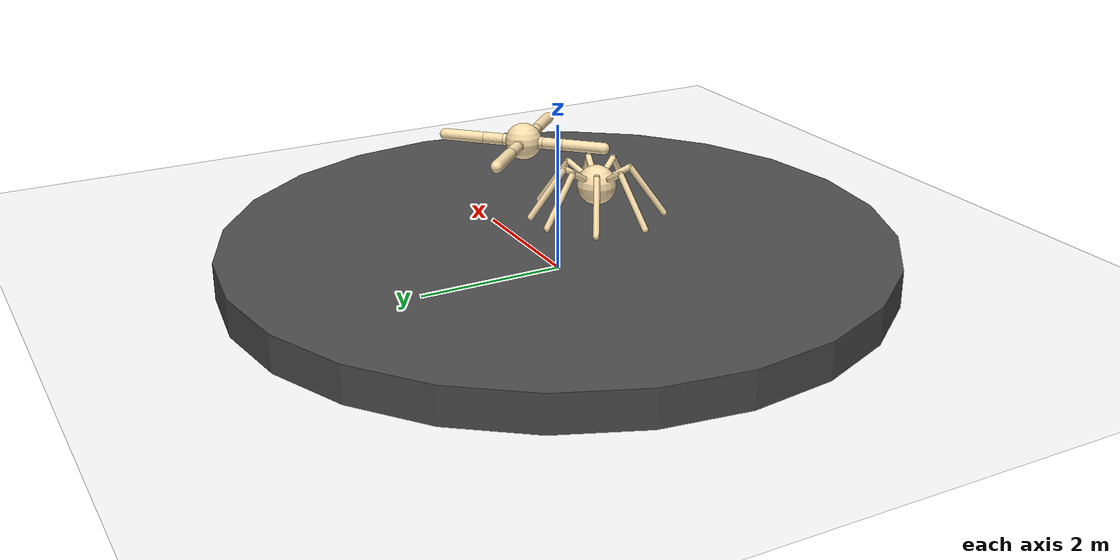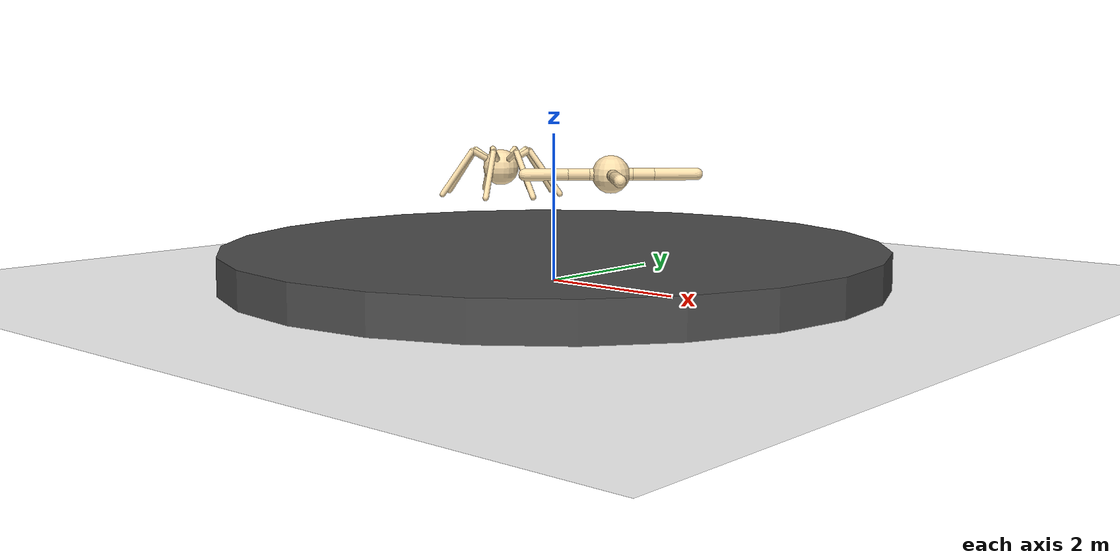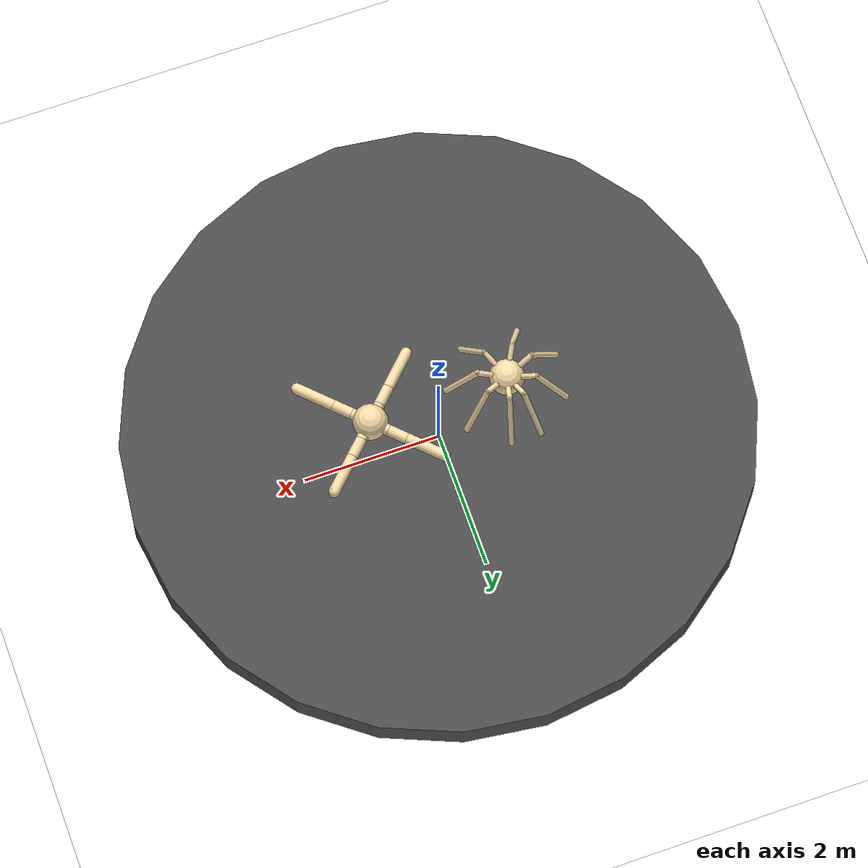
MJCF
<mujoco model="mutiagent_world">
  <compiler angle="degree" coordinate="local" inertiafromgeom="true" />
  <option integrator="RK4" timestep="0.003" solver="PGS" iterations="1000" />
  <default>
    <joint armature="1" damping="1" limited="true" />
  <default class="agent0"><geom conaffinity="0" condim="3" density="5.0" friction="1 0.5 0.5" margin="0.01" rgba="0.98 0.87 0.67 1" material="geom" contype="1" />
    <motor ctrllimited="true" ctrlrange="-1. 1." />
  </default><default class="agent1"><joint armature="1" damping="1" limited="true" />
    <geom conaffinity="1" condim="3" density="5.0" friction="1 0.5 0.5" margin="0.01" rgba="0.98 0.87 0.67 1" material="geom" contype="0" />
  </default></default>
  <visual>
    <headlight ambient=".1 .1 .1" diffuse=".6 .6 .6" specular="0.3 0.3 0.3" />
    <map znear=".01" />
    <quality shadowsize="16384" />
  </visual>
  <asset>
    <texture builtin="gradient" height="100" rgb1="1 1 1" rgb2="0 0 0" type="skybox" width="100" />
    <texture builtin="flat" height="1278" mark="cross" markrgb="0 0 0" name="texgeom" random="0.01" rgb1="0.8 0.6 0.4" rgb2="0.8 0.6 0.4" type="cube" width="127" />
    <texture builtin="checker" height="100" name="texplane" rgb1="0.5 0.5 0.5" rgb2="0.5 0.5 0.5" type="2d" width="100" markrgb="0.2 0.2 0.2" mark="edge" />
    <texture name="MatPlane" type="2d" builtin="checker" rgb1=".5 .5 .5" rgb2=".5 .5 .5" width="300" height="300" mark="edge" markrgb="0.1 0.1 0.1" />
    <material name="MatPlane" texture="MatPlane" texrepeat="2 2" texuniform="true" reflectance=".2" />
    <material name="geom" texture="texgeom" texuniform="true" />
  </asset>
  <worldbody>
    <light cutoff="100" diffuse="1 1 1" dir="-0 0 -1.3" directional="true" exponent="1" pos="0 0 1.3" specular=".1 .1 .1" />
    <geom contype="1" conaffinity="1" friction="1 .1 .1" condim="3" material="MatPlane" name="floor" pos="0 0 0" rgba="1 1 1 1" size="20 20 0.125" type="plane" />
    <geom fromto="4 -5 0  4 +5 0" name="rightgoal" rgba="0.6 0.0 0.0 0" size=".03" type="cylinder" />
    <geom fromto="-4 -5 0  -4 +5 0" name="leftgoal" rgba="0.6 0.0 0.0 0" size=".03" type="cylinder" />
    <geom conaffinity="1" condim="3" contype="1" friction="1 .1 .1" name="arena" size="4.5 .25" type="cylinder" pos="0 0 0.25" rgba="0.3 0.3 0.3 1" />
  <body name="agent0/torso" pos="-1 0 1.5">
    <geom name="agent0/torso_geom" pos="0 0 0" size="0.25" type="sphere" class="agent0" />
    <joint armature="0" damping="0" limited="false" margin="0.01" name="agent0/root" pos="0 0 0" type="free" />

    <body name="agent0/back_right_leg" pos="0 0 0">
      <geom density="5.0" fromto="0 0 0 -0.056 0.209 0.125" name="agent0/aux_1_geom" size="0.04" type="capsule" class="agent0" />
      <body name="agent0/aux_11" pos="-0.056 0.209 0.125">
        <joint axis="0 0 1" name="agent0/hip_1" pos="0 0 0" range="-20 20" type="hinge" />
        <geom density="5.0" fromto="0 0 0 -0.050 0.188 0.113" name="agent0/back_right_leg_geom" size="0.04" type="capsule" class="agent0" />
        <body name="agent0/aux_12" pos="-0.050 0.188 0.113">
          <joint axis="0.97 0.26 0" name="agent0/ankle_1" pos="0 0 0" range="-35 45" type="hinge" />
          <geom density="5.0" fromto="0 0 0 -0.112 0.418 -0.600" name="agent0/back_right_ankle_geom" size="0.04" type="capsule" class="agent0" />
        </body>
      </body>
    </body>

    <body name="agent0/back_left_leg" pos="0 0 0">
      <geom density="5.0" fromto="0 0 0 0.056 0.209 0.125" name="agent0/aux_2_geom" size="0.04" type="capsule" class="agent0" />
      <body name="agent0/aux_21" pos="0.056 0.209 0.125">
        <joint axis="0 0 1" name="agent0/hip_2" pos="0 0 0" range="-20 20" type="hinge" />
        <geom density="5.0" fromto="0 0 0 0.050 0.188 0.113" name="agent0/back_left_leg_geom" size="0.04" type="capsule" class="agent0" />
        <body name="agent0/aux_22" pos="0.050 0.188 0.113">
          <joint axis="-0.97 0.26 0" name="agent0/ankle_2" pos="0 0 0" range="-45 35" type="hinge" />
          <geom density="5.0" fromto="0 0 0 0.112 0.418 -0.600" name="agent0/back_left_ankle_geom" size="0.04" type="capsule" class="agent0" />
        </body>
      </body>
    </body>

    <body name="agent0/middle_back_right_leg" pos="0 0 0">
      <geom density="5.0" fromto="0 0 0 -0.188 0.108 0.125" name="agent0/aux_3_geom" size="0.04" type="capsule" class="agent0" />
      <body name="agent0/aux_31" pos="-0.188 0.108 0.125">
        <joint axis="0 0 1" name="agent0/hip_3" pos="0 0 0" range="-20 20" type="hinge" />
        <geom density="5.0" fromto="0 0 0 -0.170 0.097 0.113" name="agent0/middle_back_right_leg_geom" size="0.04" type="capsule" class="agent0" />
        <body name="agent0/aux_32" pos="-0.170 0.097 0.113">
          <joint axis="0.50 0.87 0" name="agent0/ankle_3" pos="0 0 0" range="-35 45" type="hinge" />
          <geom density="5.0" fromto="0 0 0 -0.376 0.216 -0.600" name="agent0/middle_back_right_ankle_geom" size="0.04" type="capsule" class="agent0" />
        </body>
      </body>
    </body>

    <body name="agent0/middle_back_left_leg" pos="0 0 0">
      <geom density="5.0" fromto="0 0 0 0.188 0.108 0.125" name="agent0/aux_4_geom" size="0.04" type="capsule" class="agent0" />
      <body name="agent0/aux_41" pos="0.188 0.108 0.125">
        <joint axis="0 0 1" name="agent0/hip_4" pos="0 0 0" range="-20 20" type="hinge" />
        <geom density="5.0" fromto="0 0 0 0.170 0.097 0.113" name="agent0/middle_back_left_leg_geom" size="0.04" type="capsule" class="agent0" />
        <body name="agent0/aux_42" pos="0.170 0.097 0.113">
          <joint axis="-0.50 0.87 0" name="agent0/ankle_4" pos="0 0 0" range="-45 35" type="hinge" />
          <geom density="5.0" fromto="0 0 0 0.376 0.216 -0.600" name="agent0/middle_back_left_ankle_geom" size="0.04" type="capsule" class="agent0" />
        </body>
      </body>
    </body>

    <body name="agent0/middle_front_right_leg" pos="0 0 0">
      <geom density="5.0" fromto="0 0 0 -0.209 -0.056 0.125" name="agent0/aux_5_geom" size="0.04" type="capsule" class="agent0" />
      <body name="agent0/aux_51" pos="-0.209 -0.056 0.125">
        <joint axis="0 0 1" name="agent0/hip_5" pos="0 0 0" range="-20 20" type="hinge" />
        <geom density="5.0" fromto="0 0 0 -0.188 -0.050 0.113" name="agent0/middle_front_right_leg_geom" size="0.04" type="capsule" class="agent0" />
        <body name="agent0/aux_52" pos="-0.188 -0.050 0.113">
          <joint axis="-0.26 0.97 0" name="agent0/ankle_5" pos="0 0 0" range="-35 45" type="hinge" />
          <geom density="5.0" fromto="0 0 0 -0.418 -0.112 -0.600" name="agent0/middle_front_right_ankle_geom" size="0.04" type="capsule" class="agent0" />
        </body>
      </body>
    </body>

    <body name="agent0/middle_front_left_leg" pos="0 0 0">
      <geom density="5.0" fromto="0 0 0 0.209 -0.056 0.125" name="agent0/aux_6_geom" size="0.04" type="capsule" class="agent0" />
      <body name="agent0/aux_61" pos="0.209 -0.056 0.125">
        <joint axis="0 0 1" name="agent0/hip_6" pos="0 0 0" range="-20 20" type="hinge" />
        <geom density="5.0" fromto="0 0 0 0.188 -0.050 0.113" name="agent0/middle_front_left_leg_geom" size="0.04" type="capsule" class="agent0" />
        <body name="agent0/aux_62" pos="0.188 -0.050 0.113">
          <joint axis="0.26 0.97 0" name="agent0/ankle_6" pos="0 0 0" range="-45 35" type="hinge" />
          <geom density="5.0" fromto="0 0 0 0.418 -0.112 -0.600" name="agent0/middle_front_left_ankle_geom" size="0.04" type="capsule" class="agent0" />
        </body>
      </body>
    </body>

    <body name="agent0/front_right_leg" pos="0 0 0">
      <geom density="5.0" fromto="0 0 0 -0.108 -0.188 0.125" name="agent0/aux_7_geom" size="0.04" type="capsule" class="agent0" />
      <body name="agent0/aux_71" pos="-0.108 -0.188 0.125">
        <joint axis="0 0 1" name="agent0/hip_7" pos="0 0 0" range="-20 20" type="hinge" />
        <geom density="5.0" fromto="0 0 0 -0.097 -0.170 0.113" name="agent0/front_right_leg_geom" size="0.04" type="capsule" class="agent0" />
        <body name="agent0/aux_72" pos="-0.097 -0.170 0.113">
          <joint axis="-0.87 0.50 0" name="agent0/ankle_7" pos="0 0 0" range="-35 45" type="hinge" />
          <geom density="5.0" fromto="0 0 0 -0.216 -0.376 -0.600" name="agent0/front_right_ankle_geom" size="0.04" type="capsule" class="agent0" />
        </body>
      </body>
    </body>

    <body name="agent0/front_left_leg" pos="0 0 0">
      <geom density="5.0" fromto="0 0 0 0.108 -0.188 0.125" name="agent0/aux_8_geom" size="0.04" type="capsule" class="agent0" />
      <body name="agent0/aux_81" pos="0.108 -0.188 0.125">
        <joint axis="0 0 1" name="agent0/hip_8" pos="0 0 0" range="-20 20" type="hinge" />
        <geom density="5.0" fromto="0 0 0 0.097 -0.170 0.113" name="agent0/front_left_leg_geom" size="0.04" type="capsule" class="agent0" />
        <body name="agent0/aux_82" pos="0.097 -0.170 0.113">
          <joint axis="0.87 0.50 0" name="agent0/ankle_8" pos="0 0 0" range="-45 35" type="hinge" />
          <geom density="5.0" fromto="0 0 0 0.216 -0.376 -0.600" name="agent0/front_left_ankle_geom" size="0.04" type="capsule" class="agent0" />
        </body>
      </body>
    </body>
  </body>
  <body name="agent1/0" pos="1 0 1.5" euler="0 0 180">
    <geom pos="0 0 0" size="0.25" type="sphere" class="agent1" name="agent1/anon4495394816" />
    <joint armature="0" damping="0" limited="false" margin="0.01" name="agent1/0_joint" pos="0 0 0" range="-30 30" type="free" />
    <body name="agent1/1" pos="0 0 0">
      <geom fromto="0 0 0 0.2 0.2 0" size="0.08" type="capsule" class="agent1" name="agent1/anon4684118974" />
      <body name="agent1/11" pos="0.2 0.2 0">
        <joint axis="0 0 1" name="agent1/11_joint" pos="0 0 0" range="-30 30" type="hinge" />
        <geom fromto="0.0 0.0 0.0 0.2 0.2 0.0" size="0.08" type="capsule" class="agent1" name="agent1/anon1934879561" />
        <body name="agent1/111" pos="0.2 0.2 0">
          <geom fromto="0 0 0 0.4 0.4 0" size="0.08" type="capsule" class="agent1" name="agent1/anon8646907154" />
          <joint axis="-0.707107 0.707107 0" name="agent1/111_joint" pos="0 0 0" range="30 70" type="hinge" />
        </body>
      </body>
    </body>
    <body name="agent1/2" pos="0 0 0">
      <geom fromto="0 0 0 -0.2 0.2 0" size="0.08" type="capsule" class="agent1" name="agent1/anon5950318586" />
      <body name="agent1/12" pos="-0.2 0.2 0">
        <joint axis="0 0 1" name="agent1/12_joint" pos="0 0 0" range="-30 30" type="hinge" />
        <geom fromto="0.0 0.0 0.0 -0.2 0.2 0.0" size="0.08" type="capsule" class="agent1" name="agent1/anon68574554" />
        <body name="agent1/112" pos="-0.2 0.2 0">
          <geom fromto="0 0 0 -0.4 0.4 0" size="0.08" type="capsule" class="agent1" name="agent1/anon991681410" />
          <joint axis="-0.707107 -0.707107 0" name="agent1/112_joint" pos="0 0 0" range="30 70" type="hinge" />
        </body>
      </body>
    </body>

    <body name="agent1/3" pos="0 0 0">
      <geom fromto="0 0 0 -0.2 -0.2 0" size="0.08" type="capsule" class="agent1" name="agent1/anon3578544904" />
      <body name="agent1/13" pos="-0.2 -0.2 0">
        <joint axis="0 0 1" name="agent1/13_joint" pos="0 0 0" range="-30 30" type="hinge" />
        <geom fromto="0 0 0 -0.2 -0.2 0" size="0.08" type="capsule" class="agent1" name="agent1/anon9334530083" />
        <body name="agent1/113" pos="-0.2 -0.2 0">
          <geom fromto="0 0 0 -0.4 -0.4 0" size="0.08" type="capsule" class="agent1" name="agent1/anon5974559825" />
          <joint axis="0.707107 -0.707107 0" name="agent1/113_joint" pos="0 0 0" range="30 70" type="hinge" />
        </body>
      </body>
    </body>

    <body name="agent1/4" pos="0 0 0">
      <geom fromto="0 0 0 0.2 -0.2 0" size="0.08" type="capsule" class="agent1" name="agent1/anon6120997886" />
      <body name="agent1/14" pos="0.2 -0.2 0">
        <joint axis="0 0 1" name="agent1/14_joint" pos="0 0 0" range="-30 30" type="hinge" />
        <geom fromto="0 0 0 0.2 -0.2 0" size="0.08" type="capsule" class="agent1" name="agent1/anon5188069942" />
        <body name="agent1/114" pos="0.2 -0.2 0">
          <geom fromto="0 0 0 0.4 -0.4 0" size="0.08" type="capsule" class="agent1" name="agent1/anon6733221636" />
          <joint axis="0.707107 0.707107 0" name="agent1/114_joint" pos="0 0 0" range="30 70" type="hinge" />
        </body>
      </body>
    </body>
  </body>

  </worldbody>
<actuator>

    <motor ctrllimited="true" ctrlrange="-1.0 1.0" joint="agent0/hip_1" gear="50" class="agent0" />
    <motor ctrllimited="true" ctrlrange="-1.0 1.0" joint="agent0/ankle_1" gear="50" class="agent0" />
    <motor ctrllimited="true" ctrlrange="-1.0 1.0" joint="agent0/hip_2" gear="50" class="agent0" />
    <motor ctrllimited="true" ctrlrange="-1.0 1.0" joint="agent0/ankle_2" gear="50" class="agent0" />
    <motor ctrllimited="true" ctrlrange="-1.0 1.0" joint="agent0/hip_3" gear="50" class="agent0" />
    <motor ctrllimited="true" ctrlrange="-1.0 1.0" joint="agent0/ankle_3" gear="50" class="agent0" />
    <motor ctrllimited="true" ctrlrange="-1.0 1.0" joint="agent0/hip_4" gear="50" class="agent0" />
    <motor ctrllimited="true" ctrlrange="-1.0 1.0" joint="agent0/ankle_4" gear="50" class="agent0" />
    <motor ctrllimited="true" ctrlrange="-1.0 1.0" joint="agent0/hip_5" gear="50" class="agent0" />
    <motor ctrllimited="true" ctrlrange="-1.0 1.0" joint="agent0/ankle_5" gear="50" class="agent0" />
    <motor ctrllimited="true" ctrlrange="-1.0 1.0" joint="agent0/hip_6" gear="50" class="agent0" />
    <motor ctrllimited="true" ctrlrange="-1.0 1.0" joint="agent0/ankle_6" gear="50" class="agent0" />
    <motor ctrllimited="true" ctrlrange="-1.0 1.0" joint="agent0/hip_7" gear="50" class="agent0" />
    <motor ctrllimited="true" ctrlrange="-1.0 1.0" joint="agent0/ankle_7" gear="50" class="agent0" />
    <motor ctrllimited="true" ctrlrange="-1.0 1.0" joint="agent0/hip_8" gear="50" class="agent0" />
    <motor ctrllimited="true" ctrlrange="-1.0 1.0" joint="agent0/ankle_8" gear="50" class="agent0" />
  <motor ctrllimited="true" ctrlrange="-1.0 1.0" joint="agent1/11_joint" gear="150" name="agent1/11_joint" class="agent1" />
    <motor ctrllimited="true" ctrlrange="-1.0 1.0" joint="agent1/12_joint" gear="150" name="agent1/12_joint" class="agent1" />
    <motor ctrllimited="true" ctrlrange="-1.0 1.0" joint="agent1/13_joint" gear="150" name="agent1/13_joint" class="agent1" />
    <motor ctrllimited="true" ctrlrange="-1.0 1.0" joint="agent1/14_joint" gear="150" name="agent1/14_joint" class="agent1" />
    <motor ctrllimited="true" ctrlrange="-1.0 1.0" joint="agent1/111_joint" gear="150" name="agent1/111_joint" class="agent1" />
    <motor ctrllimited="true" ctrlrange="-1.0 1.0" joint="agent1/112_joint" gear="150" name="agent1/112_joint" class="agent1" />
    <motor ctrllimited="true" ctrlrange="-1.0 1.0" joint="agent1/113_joint" gear="150" name="agent1/113_joint" class="agent1" />
    <motor ctrllimited="true" ctrlrange="-1.0 1.0" joint="agent1/114_joint" gear="150" name="agent1/114_joint" class="agent1" />
  </actuator>
  </mujoco>
